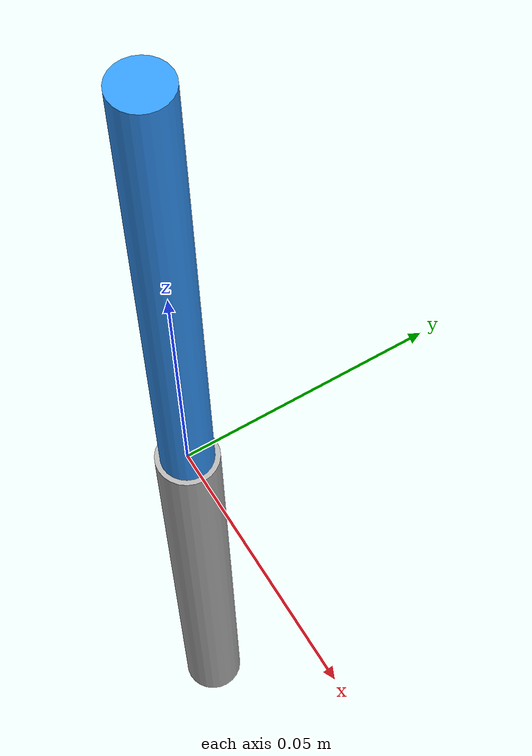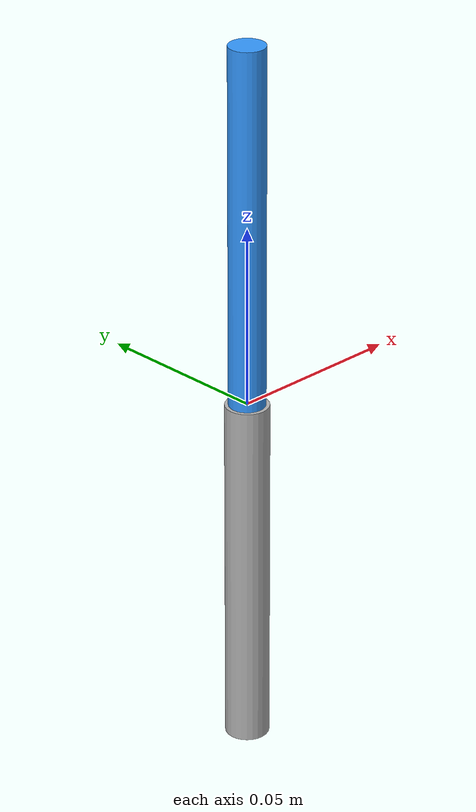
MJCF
<mujoco model="peg_in_hole">
  <compiler angle="degree" inertiafromgeom="true" coordinate="local"/>
  <option timestep="0.001" gravity="0 0 -9.81"/>
  <default>
    <geom contype="1" conaffinity="1" solref="0.002 1" solimp="0.95 0.99 0.001" friction="0.8 0.1 0.1"/>
    <joint damping="0.02"/>
  </default>

  <worldbody>
    <body name="peg_body" pos="0 0 0.1">
      <joint name="slide_z" type="slide" axis="0 0 1" range="0 0.12"/>
      <geom name="peg_geom" type="cylinder" size="0.005 0.05" fromto="0 0 0 0 0 -0.1" rgba="0.2 0.6 1 1" density="500"/>
      <site name="peg_tip" pos="0 0 -0.1" size="0.003" rgba="1 0 0 1"/>
    </body>
    <body name="hole_body" pos="0 0 0">
      <geom name="hole_geom" type="cylinder" size="0.006 0.05" fromto="0 0 0 0 0 -0.1" rgba="0.7 0.7 0.7 1" contype="0" conaffinity="0"/>
    </body>
  </worldbody>

  <actuator>
    <motor name="slide_motor" joint="slide_z" ctrlrange="-1 1" gear="1"/>
  </actuator>
</mujoco>
